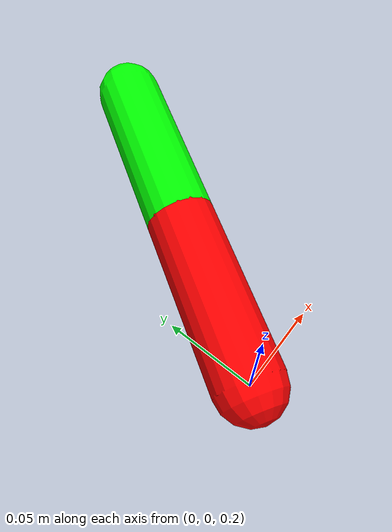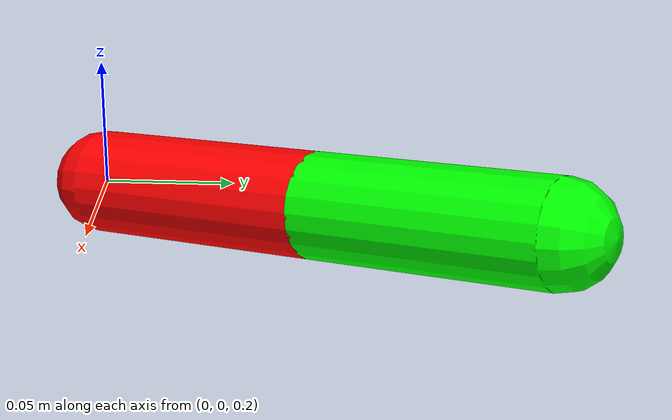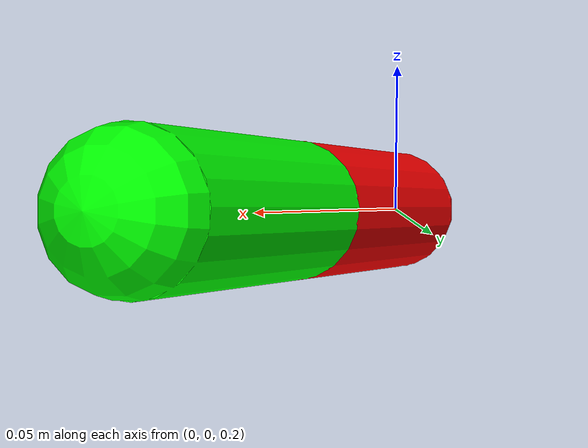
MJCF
<mujoco model="capsule_rope">
  <compiler angle="degree"/>
  <option gravity="0 0 -9.81"/>
  <default>
    <default class="/">
      <joint damping="0.01"/>
      <geom friction="1 0.005 0.0001" density="500"/>
    </default>
  </default>

  <worldbody>
    <body name="seg0" pos="0 0 0.2" euler="45 45 45">
      <geom name="seg0_geom" class="/" type="capsule" size="0.02 0.05" rgba="1 0 0 1" fromto="-0 0 0 0.1 0 0"/>
      <body name="seg1" pos="0.1 0 0">
        <joint name="ball1" class="/" type="ball" stiffness="0"/>
        <geom name="seg1_geom" class="/" type="capsule" size="0.02 0.05" rgba="0 1 0 1" fromto="-0 0 0 0.1 0 0"/>
      </body>
    </body>
  </worldbody>
</mujoco>
